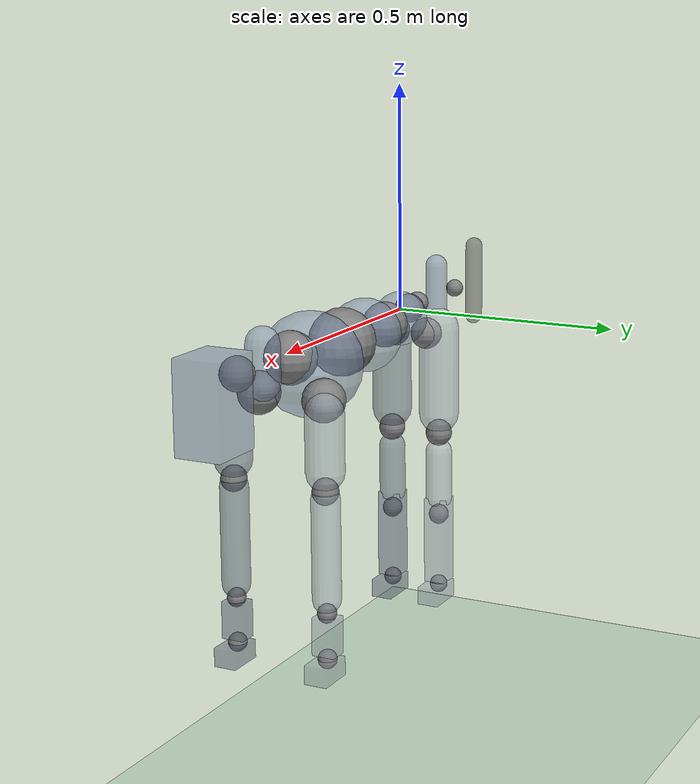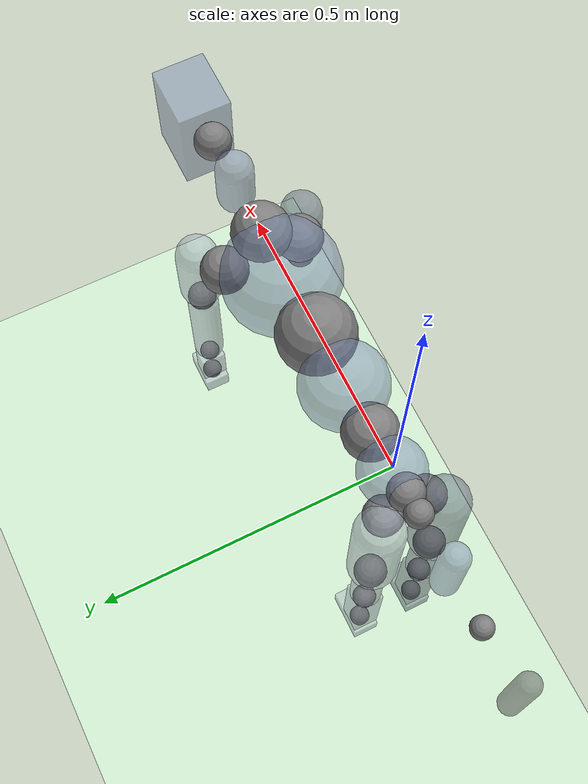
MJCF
<mujoco model="humanoid">
    <compiler angle="radian"/>
    <option gravity="0 0 -9.81"/>
    <asset>
        <texture builtin="gradient" height="100" rgb1=".4 .5 .6" rgb2="0 0 0" type="skybox" width="100"/>
        <texture builtin="flat" height="1278" mark="cross" markrgb="1 1 1" name="texgeom" random="0.01" rgb1="0.8 0.6 0.4" rgb2="0.8 0.6 0.4" type="cube" width="127"/>
        <texture builtin="checker" height="100" name="texplane" rgb1="0 0 0" rgb2="0.8 0.8 0.8" type="2d" width="100"/>
        <material name="MatPlane" reflectance="0.5" shininess="1" specular="1" texrepeat="60 60" texture="texplane"/>
        <material name="geom" texture="texgeom" texuniform="true"/>
    </asset>
    <worldbody>
        <geom condim="3" friction="1 .1 .1" material="MatPlane" name="floor" pos="0 0 -0.9" rgba="0.8 0.9 0.8 1" size="20 20 0.125" type="plane"/>
	<body name="root" pos="0 0 0">
		<geom type="sphere" name="root" mass="2.0" size="0.06" pos="0 0 -0.02" rgba="0.4706 0.549 0.6863 0.5"/>
		<joint name="root" type="free" pos="0 0 0" />
		<site type="sphere" name="joint_left_upper_leg" pos="-0.05 -0.04 -0.06" size="0.035" />
		<site type="sphere" name="joint_right_upper_leg" pos="-0.05 0.04 -0.06" size="0.035" />
		<site type="sphere" name="joint_tail" pos="-0.045 0 -0.005" size="0.0325" />
		<body name="spine0" pos="0 0 0">
			<geom type="sphere" name="spine0" mass="3.0" size="0.08" pos="0.17 0 -0.025" rgba="0.4706 0.549 0.6863 0.5"/>
			<joint type="hinge" name="spine0_0" axis="1 0 0" pos="0 0 0" range="1 0" />
			<joint type="hinge" name="spine0_1" axis="0 1 0" pos="0 0 0" range="1 0" />
			<joint type="hinge" name="spine0_2" axis="0 0 1" pos="0 0 0" range="1 0" />
			<site type="sphere" name="joint_spine0" pos="0.075 0 -0.02" size="0.05" />
			<body name="spine1" pos="0.2375 0 0">
				<geom type="sphere" name="spine1" mass="7.0" size="0.11" pos="0.17 0 -0.04" rgba="0.4706 0.549 0.6863 0.5"/>
				<joint type="hinge" name="spine1_0" axis="1 0 0" pos="0 0 0" range="1 0" />
				<joint type="hinge" name="spine1_1" axis="0 1 0" pos="0 0 0" range="1 0" />
				<joint type="hinge" name="spine1_2" axis="0 0 1" pos="0 0 0" range="1 0" />
				<site type="sphere" name="joint_spine1" pos="0.035 0 -0.02" size="0.0725" />
				<site type="sphere" name="joint_neck" pos="0.25 0 -0.01" size="0.055" />
				<site type="sphere" name="joint_left_shoulder" pos="0.25 -0.075 -0.09" size="0.045" />
				<site type="sphere" name="joint_right_shoulder" pos="0.25 0.075 -0.09" size="0.045" />
				<body name="neck" pos="0.28135 0 0">
					<geom type="capsule" name="neck" mass="1.0" fromto="0.075 0 -0.04 0.075 0 0.04" size="0.035" rgba="0.4706 0.549 0.6863 0.5"/>
					<joint type="hinge" name="neck_0" axis="1 0 0" pos="0 0 0" range="1 0" />
					<joint type="hinge" name="neck_1" axis="0 1 0" pos="0 0 0" range="1 0" />
					<joint type="hinge" name="neck_2" axis="0 0 1" pos="0 0 0" range="1 0" />
					<site type="sphere" name="joint_head" pos="0.17 0 0" size="0.035" />
					<body name="head" pos="0.175 0 0">
						<geom type="box" name="head" mass="1.5" size="0.06 0.05 0.095" pos="0.08 0 -0.04" rgba="0.4706 0.549 0.6863 0.5"/>
						<joint type="hinge" name="head_0" axis="1 0 0" pos="0 0 0" range="1 0" />
						<joint type="hinge" name="head_1" axis="0 1 0" pos="0 0 0" range="1 0" />
						<joint type="hinge" name="head_2" axis="0 0 1" pos="0 0 0" range="1 0" />
					</body>
				</body>
				<body name="left_shoulder" pos="0.304074 -0.106071 -0.109983">
					<geom type="capsule" name="left_shoulder" mass="1.5" fromto="0 0 -0.11 0 0 0.009999999999999995" size="0.04" rgba="0.3529 0.41176 0.47059 0.5"/>
					<joint type="hinge" name="left_shoulder_0" axis="1 0 0" pos="0 0 0" range="1 0" />
					<joint type="hinge" name="left_shoulder_1" axis="0 1 0" pos="0 0 0" range="1 0" />
					<joint type="hinge" name="left_shoulder_2" axis="0 0 1" pos="0 0 0" range="1 0" />
					<site type="sphere" name="joint_left_forearm" pos="0 0 -0.15" size="0.0275" />
					<body name="left_forearm" pos="0 0 -0.19">
						<geom type="capsule" name="left_forearm" mass="1.0" fromto="0 0 -0.185 0 0 0.02500000000000001" size="0.03" rgba="0.3529 0.41176 0.47059 0.5"/>
						<joint name="left_forearm" type="hinge" pos="0 0 0" axis="0 -1 0" range="0 3.14" />
						<site type="sphere" name="joint_left_hand" pos="0 0 -0.215" size="0.02" />
						<body name="left_hand" pos="0 0 -0.2225">
							<geom type="box" name="left_hand" mass="0.5" size="0.02 0.025 0.04" pos="0 0 -0.04" rgba="0.3529 0.41176 0.47059 0.5"/>
							<joint type="hinge" name="left_hand_0" axis="1 0 0" pos="0 0 0" range="1 0" />
							<joint type="hinge" name="left_hand_1" axis="0 1 0" pos="0 0 0" range="1 0" />
							<joint type="hinge" name="left_hand_2" axis="0 0 1" pos="0 0 0" range="1 0" />
							<site type="sphere" name="joint_left_finger" pos="0 0 -0.09" size="0.02" />
							<body name="left_finger" pos="0 0 -0.09">
								<geom type="box" name="left_finger" mass="0.5" size="0.04 0.025 0.02" pos="0.012 0 -0.02" rgba="0.3529 0.41176 0.47059 0.5"/>
								<joint type="hinge" name="left_finger_0" axis="1 0 0" pos="0 0 0" range="1 0" />
								<joint type="hinge" name="left_finger_1" axis="0 1 0" pos="0 0 0" range="1 0" />
								<joint type="hinge" name="left_finger_2" axis="0 0 1" pos="0 0 0" range="1 0" />
							</body>
						</body>
					</body>
				</body>
				<body name="right_shoulder" pos="0.304074 0.106071 -0.109983">
					<geom type="capsule" name="right_shoulder" mass="1.5" fromto="0 0 -0.11 0 0 0.009999999999999995" size="0.04" rgba="0.6392 0.6941 0.7372 0.5"/>
					<joint type="hinge" name="right_shoulder_0" axis="1 0 0" pos="0 0 0" range="1 0" />
					<joint type="hinge" name="right_shoulder_1" axis="0 1 0" pos="0 0 0" range="1 0" />
					<joint type="hinge" name="right_shoulder_2" axis="0 0 1" pos="0 0 0" range="1 0" />
					<site type="sphere" name="joint_right_forearm" pos="0 0 -0.15" size="0.0275" />
					<body name="right_forearm" pos="0 0 -0.19">
						<geom type="capsule" name="right_forearm" mass="1.0" fromto="0 0 -0.185 0 0 0.02500000000000001" size="0.03" rgba="0.6392 0.6941 0.7372 0.5"/>
						<joint name="right_forearm" type="hinge" pos="0 0 0" axis="0 -1 0" range="0 3.14" />
						<site type="sphere" name="joint_right_hand" pos="0 0 -0.215" size="0.02" />
						<body name="right_hand" pos="0 0 -0.2225">
							<geom type="box" name="right_hand" mass="0.5" size="0.02 0.025 0.04" pos="0 0 -0.04" rgba="0.6392 0.6941 0.7372 0.5"/>
							<joint type="hinge" name="right_hand_0" axis="1 0 0" pos="0 0 0" range="1 0" />
							<joint type="hinge" name="right_hand_1" axis="0 1 0" pos="0 0 0" range="1 0" />
							<joint type="hinge" name="right_hand_2" axis="0 0 1" pos="0 0 0" range="1 0" />
							<site type="sphere" name="joint_right_finger" pos="0 0 -0.09" size="0.02" />
							<body name="right_finger" pos="0 0 -0.09">
								<geom type="box" name="right_finger" mass="0.5" size="0.04 0.025 0.02" pos="0.012 0 -0.02" rgba="0.6392 0.6941 0.7372 0.5"/>
								<joint type="hinge" name="right_finger_0" axis="1 0 0" pos="0 0 0" range="1 0" />
								<joint type="hinge" name="right_finger_1" axis="0 1 0" pos="0 0 0" range="1 0" />
								<joint type="hinge" name="right_finger_2" axis="0 0 1" pos="0 0 0" range="1 0" />
							</body>
						</body>
					</body>
				</body>
			</body>
		</body>
		<body name="left_upper_leg" pos="-0.074803 -0.05986 -0.095825">
			<geom type="capsule" name="left_upper_leg" mass="1.5" fromto="0 0 -0.155 0 0 0.04500000000000001" size="0.045" rgba="0.3529 0.41176 0.47059 0.5"/>
			<joint type="hinge" name="left_upper_leg_0" axis="1 0 0" pos="0 0 0" range="1 0" />
			<joint type="hinge" name="left_upper_leg_1" axis="0 1 0" pos="0 0 0" range="1 0" />
			<joint type="hinge" name="left_upper_leg_2" axis="0 0 1" pos="0 0 0" range="1 0" />
			<site type="sphere" name="joint_left_leg" pos="0 0 -0.2" size="0.03" />
			<body name="left_leg" pos="0 0 -0.2">
				<geom type="capsule" name="left_leg" mass="1.0" fromto="0 0 -0.155 0 0 -0.045000000000000005" size="0.03" rgba="0.3529 0.41176 0.47059 0.5"/>
				<joint name="left_leg" type="hinge" pos="0 0 0" axis="0 -1 0" range="-3.14 0" />
				<site type="sphere" name="joint_left_foot" pos="0 0 -0.195" size="0.0225" />
				<body name="left_foot" pos="0 0 -0.225">
					<geom type="box" name="left_foot" mass="0.5" size="0.025 0.025 0.1" pos="0 0 -0.03" rgba="0.3529 0.41176 0.47059 0.5"/>
					<joint type="hinge" name="left_foot_0" axis="1 0 0" pos="0 0 0" range="1 0" />
					<joint type="hinge" name="left_foot_1" axis="0 1 0" pos="0 0 0" range="1 0" />
					<joint type="hinge" name="left_foot_2" axis="0 0 1" pos="0 0 0" range="1 0" />
					<site type="sphere" name="joint_left_toe" pos="0 0 -0.14" size="0.02" />
					<body name="left_toe" pos="0 0 -0.135">
						<geom type="box" name="left_toe" mass="0.5" size="0.045 0.025 0.02" pos="0.015 0 -0.02" rgba="0.3529 0.41176 0.47059 0.5"/>
						<joint type="hinge" name="left_toe_0" axis="1 0 0" pos="0 0 0" range="1 0" />
						<joint type="hinge" name="left_toe_1" axis="0 1 0" pos="0 0 0" range="1 0" />
						<joint type="hinge" name="left_toe_2" axis="0 0 1" pos="0 0 0" range="1 0" />
					</body>
				</body>
			</body>
		</body>
		<body name="right_upper_leg" pos="-0.074803 0.05986 -0.095825">
			<geom type="capsule" name="right_upper_leg" mass="1.5" fromto="0 0 -0.155 0 0 0.04500000000000001" size="0.045" rgba="0.6392 0.6941 0.7372 0.5"/>
			<joint type="hinge" name="right_upper_leg_0" axis="1 0 0" pos="0 0 0" range="1 0" />
			<joint type="hinge" name="right_upper_leg_1" axis="0 1 0" pos="0 0 0" range="1 0" />
			<joint type="hinge" name="right_upper_leg_2" axis="0 0 1" pos="0 0 0" range="1 0" />
			<site type="sphere" name="joint_right_leg" pos="0 0 -0.2" size="0.03" />
			<body name="right_leg" pos="0 0 -0.2">
				<geom type="capsule" name="right_leg" mass="1.0" fromto="0 0 -0.155 0 0 -0.045000000000000005" size="0.03" rgba="0.6392 0.6941 0.7372 0.5"/>
				<joint name="right_leg" type="hinge" pos="0 0 0" axis="0 -1 0" range="-3.14 0" />
				<site type="sphere" name="joint_right_foot" pos="0 0 -0.195" size="0.0225" />
				<body name="right_foot" pos="0 0 -0.225">
					<geom type="box" name="right_foot" mass="0.5" size="0.025 0.025 0.1" pos="0 0 -0.03" rgba="0.6392 0.6941 0.7372 0.5"/>
					<joint type="hinge" name="right_foot_0" axis="1 0 0" pos="0 0 0" range="1 0" />
					<joint type="hinge" name="right_foot_1" axis="0 1 0" pos="0 0 0" range="1 0" />
					<joint type="hinge" name="right_foot_2" axis="0 0 1" pos="0 0 0" range="1 0" />
					<site type="sphere" name="joint_right_toe" pos="0 0 -0.14" size="0.02" />
					<body name="right_toe" pos="0 0 -0.135">
						<geom type="box" name="right_toe" mass="0.5" size="0.045 0.025 0.02" pos="0.015 0 -0.02" rgba="0.6392 0.6941 0.7372 0.5"/>
						<joint type="hinge" name="right_toe_0" axis="1 0 0" pos="0 0 0" range="1 0" />
						<joint type="hinge" name="right_toe_1" axis="0 1 0" pos="0 0 0" range="1 0" />
						<joint type="hinge" name="right_toe_2" axis="0 0 1" pos="0 0 0" range="1 0" />
					</body>
				</body>
			</body>
		</body>
		<body name="tail0" pos="-0.086 0 0">
			<geom type="capsule" name="tail0" mass="0.5" fromto="-0.1 0 -0.07 -0.1 0 0.07" size="0.025" rgba="0.4706 0.549 0.6863 0.5"/>
			<joint type="hinge" name="tail0_0" axis="1 0 0" pos="0 0 0" range="1 0" />
			<joint type="hinge" name="tail0_1" axis="0 1 0" pos="0 0 0" range="1 0" />
			<joint type="hinge" name="tail0_2" axis="0 0 1" pos="0 0 0" range="1 0" />
			<site type="sphere" name="joint_tail0" pos="0 0 0" size="0.025" />
			<body name="tail1" pos="-0.2 0 0">
				<geom type="capsule" name="tail1" mass="0.25" fromto="-0.11 0 -0.085 -0.11 0 0.085" size="0.02" rgba="0.3 0.3 0.3 0.5"/>
				<joint type="hinge" name="tail1_0" axis="1 0 0" pos="0 0 0" range="1 0" />
				<joint type="hinge" name="tail1_1" axis="0 1 0" pos="0 0 0" range="1 0" />
				<joint type="hinge" name="tail1_2" axis="0 0 1" pos="0 0 0" range="1 0" />
				<site type="sphere" name="joint_tail1" pos="0 0 0" size="0.02" />
			</body>
		</body>
	</body>
	</worldbody>
<actuator>
		<motor joint="spine0_0" name="spine0_0" ctrllimited="true" ctrlrange="-1 1" gear="13.333333333333334" />
		<motor joint="spine0_1" name="spine0_1" ctrllimited="true" ctrlrange="-1 1" gear="13.333333333333334" />
		<motor joint="spine0_2" name="spine0_2" ctrllimited="true" ctrlrange="-1 1" gear="13.333333333333334" />
		<motor joint="spine1_0" name="spine1_0" ctrllimited="true" ctrlrange="-1 1" gear="13.333333333333334" />
		<motor joint="spine1_1" name="spine1_1" ctrllimited="true" ctrlrange="-1 1" gear="13.333333333333334" />
		<motor joint="spine1_2" name="spine1_2" ctrllimited="true" ctrlrange="-1 1" gear="13.333333333333334" />
		<motor joint="neck_0" name="neck_0" ctrllimited="true" ctrlrange="-1 1" gear="5.333333333333333" />
		<motor joint="neck_1" name="neck_1" ctrllimited="true" ctrlrange="-1 1" gear="5.333333333333333" />
		<motor joint="neck_2" name="neck_2" ctrllimited="true" ctrlrange="-1 1" gear="5.333333333333333" />
		<motor joint="head_0" name="head_0" ctrllimited="true" ctrlrange="-1 1" gear="3.3333333333333335" />
		<motor joint="head_1" name="head_1" ctrllimited="true" ctrlrange="-1 1" gear="3.3333333333333335" />
		<motor joint="head_2" name="head_2" ctrllimited="true" ctrlrange="-1 1" gear="3.3333333333333335" />
		<motor joint="left_shoulder_0" name="left_shoulder_0" ctrllimited="true" ctrlrange="-1 1" gear="10.0" />
		<motor joint="left_shoulder_1" name="left_shoulder_1" ctrllimited="true" ctrlrange="-1 1" gear="10.0" />
		<motor joint="left_shoulder_2" name="left_shoulder_2" ctrllimited="true" ctrlrange="-1 1" gear="10.0" />
		<motor joint="left_forearm" name="left_forearm" ctrllimited="true" ctrlrange="-1 1" gear="6.666666666666667" />
		<motor joint="left_hand_0" name="left_hand_0" ctrllimited="true" ctrlrange="-1 1" gear="5.333333333333333" />
		<motor joint="left_hand_1" name="left_hand_1" ctrllimited="true" ctrlrange="-1 1" gear="5.333333333333333" />
		<motor joint="left_hand_2" name="left_hand_2" ctrllimited="true" ctrlrange="-1 1" gear="5.333333333333333" />
		<motor joint="left_finger_0" name="left_finger_0" ctrllimited="true" ctrlrange="-1 1" gear="3.3333333333333335" />
		<motor joint="left_finger_1" name="left_finger_1" ctrllimited="true" ctrlrange="-1 1" gear="3.3333333333333335" />
		<motor joint="left_finger_2" name="left_finger_2" ctrllimited="true" ctrlrange="-1 1" gear="3.3333333333333335" />
		<motor joint="right_shoulder_0" name="right_shoulder_0" ctrllimited="true" ctrlrange="-1 1" gear="10.0" />
		<motor joint="right_shoulder_1" name="right_shoulder_1" ctrllimited="true" ctrlrange="-1 1" gear="10.0" />
		<motor joint="right_shoulder_2" name="right_shoulder_2" ctrllimited="true" ctrlrange="-1 1" gear="10.0" />
		<motor joint="right_forearm" name="right_forearm" ctrllimited="true" ctrlrange="-1 1" gear="6.666666666666667" />
		<motor joint="right_hand_0" name="right_hand_0" ctrllimited="true" ctrlrange="-1 1" gear="5.333333333333333" />
		<motor joint="right_hand_1" name="right_hand_1" ctrllimited="true" ctrlrange="-1 1" gear="5.333333333333333" />
		<motor joint="right_hand_2" name="right_hand_2" ctrllimited="true" ctrlrange="-1 1" gear="5.333333333333333" />
		<motor joint="right_finger_0" name="right_finger_0" ctrllimited="true" ctrlrange="-1 1" gear="3.3333333333333335" />
		<motor joint="right_finger_1" name="right_finger_1" ctrllimited="true" ctrlrange="-1 1" gear="3.3333333333333335" />
		<motor joint="right_finger_2" name="right_finger_2" ctrllimited="true" ctrlrange="-1 1" gear="3.3333333333333335" />
		<motor joint="left_upper_leg_0" name="left_upper_leg_0" ctrllimited="true" ctrlrange="-1 1" gear="13.333333333333334" />
		<motor joint="left_upper_leg_1" name="left_upper_leg_1" ctrllimited="true" ctrlrange="-1 1" gear="13.333333333333334" />
		<motor joint="left_upper_leg_2" name="left_upper_leg_2" ctrllimited="true" ctrlrange="-1 1" gear="13.333333333333334" />
		<motor joint="left_leg" name="left_leg" ctrllimited="true" ctrlrange="-1 1" gear="10.0" />
		<motor joint="left_foot_0" name="left_foot_0" ctrllimited="true" ctrlrange="-1 1" gear="6.666666666666667" />
		<motor joint="left_foot_1" name="left_foot_1" ctrllimited="true" ctrlrange="-1 1" gear="6.666666666666667" />
		<motor joint="left_foot_2" name="left_foot_2" ctrllimited="true" ctrlrange="-1 1" gear="6.666666666666667" />
		<motor joint="left_toe_0" name="left_toe_0" ctrllimited="true" ctrlrange="-1 1" gear="3.3333333333333335" />
		<motor joint="left_toe_1" name="left_toe_1" ctrllimited="true" ctrlrange="-1 1" gear="3.3333333333333335" />
		<motor joint="left_toe_2" name="left_toe_2" ctrllimited="true" ctrlrange="-1 1" gear="3.3333333333333335" />
		<motor joint="right_upper_leg_0" name="right_upper_leg_0" ctrllimited="true" ctrlrange="-1 1" gear="13.333333333333334" />
		<motor joint="right_upper_leg_1" name="right_upper_leg_1" ctrllimited="true" ctrlrange="-1 1" gear="13.333333333333334" />
		<motor joint="right_upper_leg_2" name="right_upper_leg_2" ctrllimited="true" ctrlrange="-1 1" gear="13.333333333333334" />
		<motor joint="right_leg" name="right_leg" ctrllimited="true" ctrlrange="-1 1" gear="10.0" />
		<motor joint="right_foot_0" name="right_foot_0" ctrllimited="true" ctrlrange="-1 1" gear="6.666666666666667" />
		<motor joint="right_foot_1" name="right_foot_1" ctrllimited="true" ctrlrange="-1 1" gear="6.666666666666667" />
		<motor joint="right_foot_2" name="right_foot_2" ctrllimited="true" ctrlrange="-1 1" gear="6.666666666666667" />
		<motor joint="right_toe_0" name="right_toe_0" ctrllimited="true" ctrlrange="-1 1" gear="3.3333333333333335" />
		<motor joint="right_toe_1" name="right_toe_1" ctrllimited="true" ctrlrange="-1 1" gear="3.3333333333333335" />
		<motor joint="right_toe_2" name="right_toe_2" ctrllimited="true" ctrlrange="-1 1" gear="3.3333333333333335" />
		<motor joint="tail0_0" name="tail0_0" ctrllimited="true" ctrlrange="-1 1" gear="3.3333333333333335" />
		<motor joint="tail0_1" name="tail0_1" ctrllimited="true" ctrlrange="-1 1" gear="3.3333333333333335" />
		<motor joint="tail0_2" name="tail0_2" ctrllimited="true" ctrlrange="-1 1" gear="3.3333333333333335" />
		<motor joint="tail1_0" name="tail1_0" ctrllimited="true" ctrlrange="-1 1" gear="1.6666666666666667" />
		<motor joint="tail1_1" name="tail1_1" ctrllimited="true" ctrlrange="-1 1" gear="1.6666666666666667" />
		<motor joint="tail1_2" name="tail1_2" ctrllimited="true" ctrlrange="-1 1" gear="1.6666666666666667" />
	</actuator>
</mujoco>
